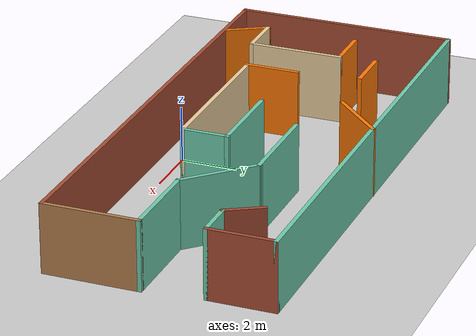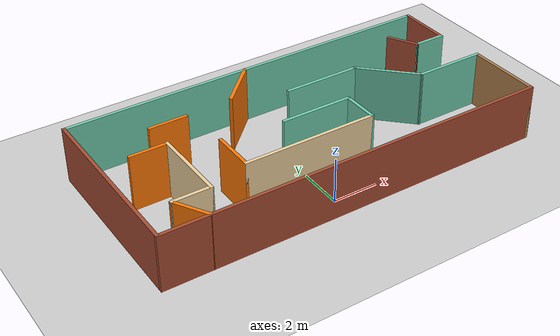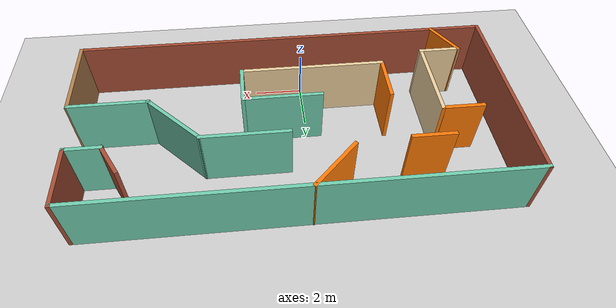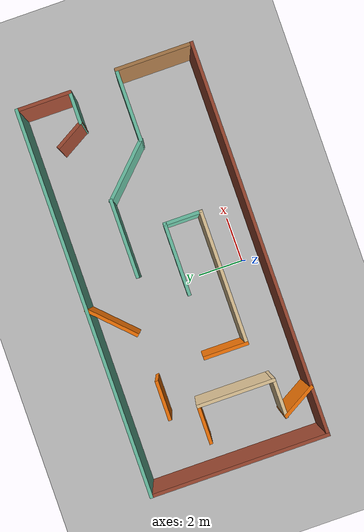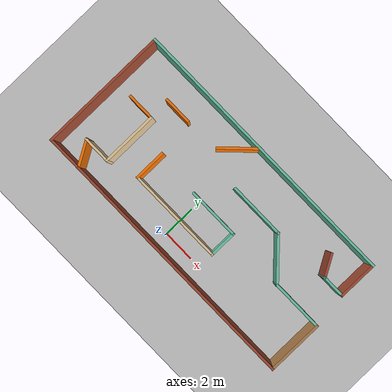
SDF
<sdf version="1.6">
 <world name="default">
  <light name="sun" type="directional">
   <pose>0 0 10 0 -0 0</pose>
   <diffuse>0.8 0.8 0.8 1</diffuse>
   <specular>0.2 0.2 0.2 1</specular>
   <attenuation>
    <range>1000</range>
    <constant>0.9</constant>
    <linear>0.01</linear>
    <quadratic>0.001</quadratic>
   </attenuation>
   <direction>-0.5 0.1 -0.9</direction>
  </light>
  <model name="ground_plane">
   <static>1</static>
   <link name="link">
    <collision name="collision">
     <geometry><plane><normal>0 0 1</normal><size>100 100</size></plane></geometry>
     <surface>
      <contact><collide_bitmask>65535</collide_bitmask></contact>
      <friction><ode><mu>100</mu><mu2>50</mu2></ode></friction>
     </surface>
    </collision>
    <visual name="visual">
     <cast_shadows>0</cast_shadows>
     <geometry><plane><normal>0 0 1</normal><size>100 100</size></plane></geometry>
     <material>
      <script><uri>file://media/materials/scripts/gazebo.material</uri><name>Gazebo/Grey</name></script>
     </material>
    </visual>
   </link>
  </model>
  <gravity>0 0 -9.8</gravity>
  <magnetic_field>6e-06 2.3e-05 -4.2e-05</magnetic_field>
  <atmosphere type="adiabatic"/>
  <physics name="default_physics" default="0" type="ode">
   <max_step_size>0.001</max_step_size>
   <real_time_factor>1</real_time_factor>
   <real_time_update_rate>1000</real_time_update_rate>
  </physics>
  <scene><ambient>0.4 0.4 0.4 1</ambient><background>0.7 0.7 0.7 1</background><shadows>1</shadows></scene>
  <spherical_coordinates>
   <surface_model>EARTH_WGS84</surface_model>
   <latitude_deg>0</latitude_deg>
   <longitude_deg>0</longitude_deg>
   <elevation>0</elevation>
   <heading_deg>0</heading_deg>
  </spherical_coordinates>
  <model name="miro_building">
   <pose>0.653666 3.11102 0 0 -0 0</pose>
   <link name="Wall_10">
    <collision name="Wall_10_Collision">
     <geometry><box><size>3.5 0.15 2.5</size></box></geometry>
     <pose>0 0 1.25 0 -0 0</pose>
    </collision>
    <visual name="Wall_10_Visual">
     <pose>0 0 1.25 0 -0 0</pose>
     <geometry><box><size>3.5 0.15 2.5</size></box></geometry>
     <material>
      <script><uri>file://media/materials/scripts/gazebo.material</uri><name>Gazebo/Grey</name></script>
      <ambient>0.435294 0.796078 0.67451 1</ambient>
     </material>
     <meta><layer>0</layer></meta>
    </visual>
    <pose>1.88475 1.43157 0 0 -0 3.14159</pose>
   </link>
   <link name="Wall_12">
    <collision name="Wall_12_Collision">
     <geometry><box><size>17.25 0.15 2.5</size></box></geometry>
     <pose>0 0 1.25 0 -0 0</pose>
    </collision>
    <visual name="Wall_12_Visual">
     <pose>0 0 1.25 0 -0 0</pose>
     <geometry><box><size>17.25 0.15 2.5</size></box></geometry>
     <material>
      <script><uri>file://media/materials/scripts/gazebo.material</uri><name>Gazebo/Grey</name></script>
      <ambient>0.435294 0.796078 0.67451 1</ambient>
     </material>
     <meta><layer>0</layer></meta>
    </visual>
    <pose>-0.125 3.91631 0 0 -0 0</pose>
   </link>
   <link name="Wall_13">
    <collision name="Wall_13_Collision">
     <geometry><box><size>2.5 0.15 2.5</size></box></geometry>
     <pose>0 0 1.25 0 -0 0</pose>
    </collision>
    <visual name="Wall_13_Visual">
     <pose>0 0 1.25 0 -0 0</pose>
     <geometry><box><size>2.5 0.15 2.5</size></box></geometry>
     <material>
      <script><uri>file://media/materials/scripts/gazebo.material</uri><name>Gazebo/Bricks</name></script>
      <ambient>1 1 1 1</ambient>
     </material>
     <meta><layer>0</layer></meta>
    </visual>
    <pose>8.425 2.74131 0 0 0 -1.5708</pose>
   </link>
   <link name="Wall_14">
    <collision name="Wall_14_Collision">
     <geometry><box><size>1.5 0.15 2.5</size></box></geometry>
     <pose>0 0 1.25 0 -0 0</pose>
    </collision>
    <visual name="Wall_14_Visual">
     <pose>0 0 1.25 0 -0 0</pose>
     <geometry><box><size>1.5 0.15 2.5</size></box></geometry>
     <material>
      <script><uri>file://media/materials/scripts/gazebo.material</uri><name>Gazebo/Grey</name></script>
      <ambient>0.435294 0.796078 0.67451 1</ambient>
     </material>
     <meta><layer>0</layer></meta>
    </visual>
    <pose>7.75 1.56631 0 0 -0 3.14159</pose>
   </link>
   <link name="Wall_15">
    <collision name="Wall_15_Collision">
     <geometry><box><size>1.5 0.15 2.5</size></box></geometry>
     <pose>0 0 1.25 0 -0 0</pose>
    </collision>
    <visual name="Wall_15_Visual">
     <pose>0 0 1.25 0 -0 0</pose>
     <geometry><box><size>1.5 0.15 2.5</size></box></geometry>
     <material>
      <script><uri>file://media/materials/scripts/gazebo.material</uri><name>Gazebo/Bricks</name></script>
      <ambient>1 1 1 1</ambient>
     </material>
     <meta><layer>0</layer></meta>
    </visual>
    <pose>6.7375 2.15088 0 0 -0 2.0944</pose>
   </link>
   <link name="Wall_17">
    <collision name="Wall_17_Collision">
     <geometry><box><size>2 0.15 2.5</size></box></geometry>
     <pose>0 0 1.25 0 -0 0</pose>
    </collision>
    <visual name="Wall_17_Visual">
     <pose>0 0 1.25 0 -0 0</pose>
     <geometry><box><size>2 0.15 2.5</size></box></geometry>
     <material>
      <script><uri>file://media/materials/scripts/gazebo.material</uri><name>Gazebo/Grey</name></script>
      <ambient>0.996078 0.47451 0.0196078 1</ambient>
     </material>
     <meta><layer>0</layer></meta>
    </visual>
    <pose>-3.94925 -1.05029 0 0 0 -1.5708</pose>
   </link>
   <link name="Wall_18">
    <collision name="Wall_18_Collision">
     <geometry><box><size>6 0.15 2.5</size></box></geometry>
     <pose>0 0 1.25 0 -0 0</pose>
    </collision>
    <visual name="Wall_18_Visual">
     <pose>0 0 1.25 0 -0 0</pose>
     <geometry><box><size>6 0.15 2.5</size></box></geometry>
     <material>
      <script><uri>file://media/materials/scripts/gazebo.material</uri><name>Gazebo/Grey</name></script>
      <ambient>0.921569 0.807843 0.615686 1</ambient>
     </material>
     <meta><layer>0</layer></meta>
    </visual>
    <pose>-1.02425 -1.97529 0 0 -0 0</pose>
   </link>
   <link name="Wall_19">
    <collision name="Wall_19_Collision">
     <geometry><box><size>1.75 0.15 2.5</size></box></geometry>
     <pose>0 0 1.25 0 -0 0</pose>
    </collision>
    <visual name="Wall_19_Visual">
     <pose>0 0 1.25 0 -0 0</pose>
     <geometry><box><size>1.75 0.15 2.5</size></box></geometry>
     <material>
      <script><uri>file://media/materials/scripts/gazebo.material</uri><name>Gazebo/Grey</name></script>
      <ambient>0.435294 0.796078 0.67451 1</ambient>
     </material>
     <meta><layer>0</layer></meta>
    </visual>
    <pose>1.90075 -1.17529 0 0 -0 1.5708</pose>
   </link>
   <link name="Wall_20">
    <collision name="Wall_20_Collision">
     <geometry><box><size>3.25 0.15 2.5</size></box></geometry>
     <pose>0 0 1.25 0 -0 0</pose>
    </collision>
    <visual name="Wall_20_Visual">
     <pose>0 0 1.25 0 -0 0</pose>
     <geometry><box><size>3.25 0.15 2.5</size></box></geometry>
     <material>
      <script><uri>file://media/materials/scripts/gazebo.material</uri><name>Gazebo/Grey</name></script>
      <ambient>0.435294 0.796078 0.67451 1</ambient>
     </material>
     <meta><layer>0</layer></meta>
    </visual>
    <pose>0.350752 -0.375291 0 0 -0 3.14159</pose>
   </link>
   <link name="Wall_22">
    <collision name="Wall_22_Collision">
     <geometry><box><size>2.5 0.15 2.5</size></box></geometry>
     <pose>0 0 1.25 0 -0 0</pose>
    </collision>
    <visual name="Wall_22_Visual">
     <pose>0 0 1.25 0 -0 0</pose>
     <geometry><box><size>2.5 0.15 2.5</size></box></geometry>
     <material>
      <script><uri>file://media/materials/scripts/gazebo.material</uri><name>Gazebo/Grey</name></script>
      <ambient>0.996078 0.47451 0.0196078 1</ambient>
     </material>
     <meta><layer>0</layer></meta>
    </visual>
    <pose>-1.25836 3.08734 0 0 0 -2.35619</pose>
   </link>
   <link name="Wall_24">
    <collision name="Wall_24_Collision">
     <geometry><box><size>1.75 0.15 2.5</size></box></geometry>
     <pose>0 0 1.25 0 -0 0</pose>
    </collision>
    <visual name="Wall_24_Visual">
     <pose>0 0 1.25 0 -0 0</pose>
     <geometry><box><size>1.75 0.15 2.5</size></box></geometry>
     <material>
      <script><uri>file://media/materials/scripts/gazebo.material</uri><name>Gazebo/Grey</name></script>
      <ambient>0.996078 0.47451 0.0196078 1</ambient>
     </material>
     <meta><layer>0</layer></meta>
    </visual>
    <pose>-5.06229 2.11819 0 0 -0 3.14159</pose>
   </link>
   <link name="Wall_26">
    <collision name="Wall_26_Collision">
     <geometry><box><size>1.75 0.15 2.5</size></box></geometry>
     <pose>0 0 1.25 0 -0 0</pose>
    </collision>
    <visual name="Wall_26_Visual">
     <pose>0 0 1.25 0 -0 0</pose>
     <geometry><box><size>1.75 0.15 2.5</size></box></geometry>
     <material>
      <script><uri>file://media/materials/scripts/gazebo.material</uri><name>Gazebo/Grey</name></script>
      <ambient>0.996078 0.47451 0.0196078 1</ambient>
     </material>
     <meta><layer>0</layer></meta>
    </visual>
    <pose>-6.56664 0.813839 0 0 -0 0</pose>
   </link>
   <link name="Wall_27">
    <collision name="Wall_27_Collision">
     <geometry><box><size>3.5 0.15 2.5</size></box></geometry>
     <pose>0 0 1.25 0 -0 0</pose>
    </collision>
    <visual name="Wall_27_Visual">
     <pose>0 0 1.25 0 -0 0</pose>
     <geometry><box><size>3.5 0.15 2.5</size></box></geometry>
     <material>
      <script><uri>file://media/materials/scripts/gazebo.material</uri><name>Gazebo/Grey</name></script>
      <ambient>0.921569 0.807843 0.615686 1</ambient>
     </material>
     <meta><layer>0</layer></meta>
    </visual>
    <pose>-5.76664 -0.861161 0 0 0 -1.5708</pose>
   </link>
   <link name="Wall_29">
    <collision name="Wall_29_Collision">
     <geometry><box><size>1.75 0.15 2.5</size></box></geometry>
     <pose>0 0 1.25 0 -0 0</pose>
    </collision>
    <visual name="Wall_29_Visual">
     <pose>0 0 1.25 0 -0 0</pose>
     <geometry><box><size>1.75 0.15 2.5</size></box></geometry>
     <material>
      <script><uri>file://media/materials/scripts/gazebo.material</uri><name>Gazebo/Grey</name></script>
      <ambient>0.921569 0.807843 0.615686 1</ambient>
     </material>
     <meta><layer>0</layer></meta>
    </visual>
    <pose>-6.56664 -2.53616 0 0 -0 3.14159</pose>
   </link>
   <link name="Wall_3">
    <collision name="Wall_3_Collision">
     <geometry><box><size>8 0.15 2.5</size></box></geometry>
     <pose>0 0 1.25 0 -0 0</pose>
    </collision>
    <visual name="Wall_3_Visual">
     <pose>0 0 1.25 0 -0 0</pose>
     <geometry><box><size>8 0.15 2.5</size></box></geometry>
     <material>
      <script><uri>file://media/materials/scripts/gazebo.material</uri><name>Gazebo/Bricks</name></script>
      <ambient>1 1 1 1</ambient>
     </material>
     <meta><layer>0</layer></meta>
    </visual>
    <pose>-8.675 -0.008686 0 0 -0 1.5708</pose>
   </link>
   <link name="Wall_30">
    <collision name="Wall_30_Collision">
     <geometry><box><size>1.75 0.15 2.5</size></box></geometry>
     <pose>0 0 1.25 0 -0 0</pose>
    </collision>
    <visual name="Wall_30_Visual">
     <pose>0 0 1.25 0 -0 0</pose>
     <geometry><box><size>1.75 0.15 2.5</size></box></geometry>
     <material>
      <script><uri>file://media/materials/scripts/gazebo.material</uri><name>Gazebo/Grey</name></script>
      <ambient>0.996078 0.47451 0.0196078 1</ambient>
     </material>
     <meta><layer>0</layer></meta>
    </visual>
    <pose>-6.96664 -3.22898 0 0 0 -1.0472</pose>
   </link>
   <link name="Wall_6">
    <collision name="Wall_6_Collision">
     <geometry><box><size>17.5 0.15 2.5</size></box></geometry>
     <pose>0 0 1.25 0 -0 0</pose>
    </collision>
    <visual name="Wall_6_Visual">
     <pose>0 0 1.25 0 -0 0</pose>
     <geometry><box><size>17.5 0.15 2.5</size></box></geometry>
     <material>
      <script><uri>file://media/materials/scripts/gazebo.material</uri><name>Gazebo/Bricks</name></script>
      <ambient>1 1 1 1</ambient>
     </material>
     <meta><layer>0</layer></meta>
    </visual>
    <pose>0 -3.93369 0 0 -0 0</pose>
   </link>
   <link name="Wall_7">
    <collision name="Wall_7_Collision">
     <geometry><box><size>3.5 0.15 2.5</size></box></geometry>
     <pose>0 0 1.25 0 -0 0</pose>
    </collision>
    <visual name="Wall_7_Visual">
     <pose>0 0 1.25 0 -0 0</pose>
     <geometry><box><size>3.5 0.15 2.5</size></box></geometry>
     <material>
      <script><uri>file://media/materials/scripts/gazebo.material</uri><name>Gazebo/Wood</name></script>
      <ambient>1 1 1 1</ambient>
     </material>
     <meta><layer>0</layer></meta>
    </visual>
    <pose>8.675 -2.25869 0 0 -0 1.5708</pose>
   </link>
   <link name="Wall_8">
    <collision name="Wall_8_Collision">
     <geometry><box><size>3.25 0.15 2.5</size></box></geometry>
     <pose>0 0 1.25 0 -0 0</pose>
    </collision>
    <visual name="Wall_8_Visual">
     <pose>0 0 1.25 0 -0 0</pose>
     <geometry><box><size>3.25 0.15 2.5</size></box></geometry>
     <material>
      <script><uri>file://media/materials/scripts/gazebo.material</uri><name>Gazebo/Grey</name></script>
      <ambient>0.435294 0.796078 0.67451 1</ambient>
     </material>
     <meta><layer>0</layer></meta>
    </visual>
    <pose>7.125 -0.583686 0 0 -0 3.14159</pose>
   </link>
   <link name="Wall_9">
    <collision name="Wall_9_Collision">
     <geometry><box><size>3 0.15 2.5</size></box></geometry>
     <pose>0 0 1.25 0 -0 0</pose>
    </collision>
    <visual name="Wall_9_Visual">
     <pose>0 0 1.25 0 -0 0</pose>
     <geometry><box><size>3 0.15 2.5</size></box></geometry>
     <material>
      <script><uri>file://media/materials/scripts/gazebo.material</uri><name>Gazebo/Grey</name></script>
      <ambient>0.435294 0.796078 0.67451 1</ambient>
     </material>
     <meta><layer>0</layer></meta>
    </visual>
    <pose>4.56737 0.423941 0 0 -0 2.35619</pose>
   </link>
   <static>1</static>
  </model>
  <plugin filename="libcollision_map_creator.so" name="collision_map_creator"/>
 </world>
</sdf>
